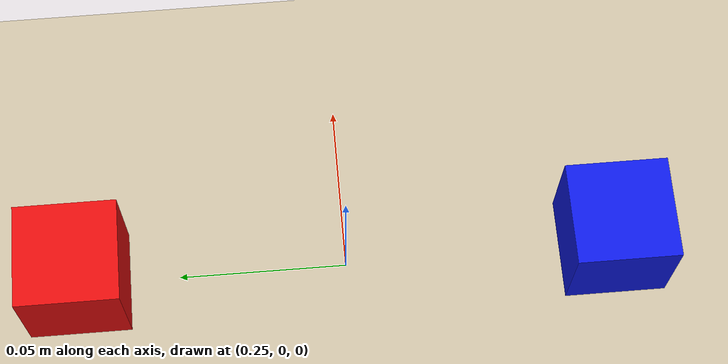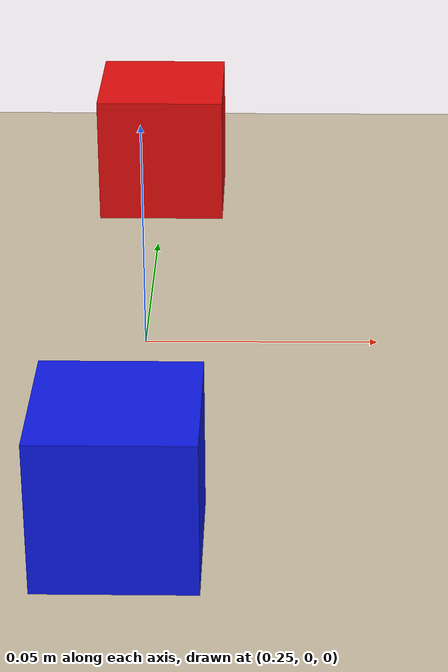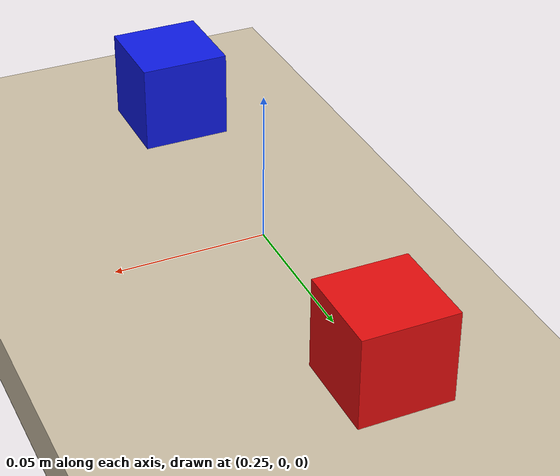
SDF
<?xml version="1.0"?>
<!-- 机（上面が z=0）・赤箱・青箱。ロボットは launch で原点に spawn する -->
<sdf version="1.6">
  <world name="default">
    <include><uri>model://sun</uri></include>

    <!-- real_time_update_rate は CPU 用の値。GPU マシンでは環境変数 SIM_REAL_TIME_UPDATE_RATE で上書きする（sim.launch.py） -->
    <physics type="ode">
      <max_step_size>0.002</max_step_size>
      <real_time_update_rate>80</real_time_update_rate>
    </physics>

    <!-- 状態の取得・設定サービス（/get_entity_state, /set_entity_state）と spawn。
         /model_states・/link_states は 50Hz（疑似固定で箱を手先に追従させるときの遅れを減らす） -->
    <plugin name="gazebo_ros_init" filename="libgazebo_ros_init.so"/>
    <plugin name="gazebo_ros_factory" filename="libgazebo_ros_factory.so"/>
    <plugin name="gazebo_ros_state" filename="libgazebo_ros_state.so">
      <ros><namespace>/</namespace></ros>
      <update_rate>50.0</update_rate>
    </plugin>

    <model name="floor">
      <static>true</static>
      <pose>0 0 -0.02 0 0 0</pose>
      <link name="link">
        <collision name="c"><geometry><plane><normal>0 0 1</normal><size>10 10</size></plane></geometry></collision>
        <visual name="v">
          <geometry><plane><normal>0 0 1</normal><size>10 10</size></plane></geometry>
          <material><ambient>0.35 0.35 0.35 1</ambient><diffuse>0.35 0.35 0.35 1</diffuse></material>
        </visual>
      </link>
    </model>

    <model name="table">
      <static>true</static>
      <pose>0.3 0 -0.01 0 0 0</pose>
      <link name="link">
        <collision name="c">
          <geometry><box><size>1.0 1.2 0.02</size></box></geometry>
          <surface><friction><ode><mu>1.0</mu><mu2>1.0</mu2></ode></friction></surface>
        </collision>
        <visual name="v">
          <geometry><box><size>1.0 1.2 0.02</size></box></geometry>
          <material><ambient>0.8 0.75 0.65 1</ambient><diffuse>0.8 0.75 0.65 1</diffuse></material>
        </visual>
      </link>
    </model>

    <!-- 約 3cm 角の箱。初期位置は scene_manager が reset で上書きする。
         collide_bitmask 0x02：可動指（0x01）とは当たらない（疑似固定 B1。so101.urdf.xacro） -->
    <model name="red_box">
      <pose>0.25 0.08 0.015 0 0 0</pose>
      <link name="link">
        <inertial>
          <mass>0.03</mass>
          <inertia><ixx>4.5e-6</ixx><iyy>4.5e-6</iyy><izz>4.5e-6</izz><ixy>0</ixy><ixz>0</ixz><iyz>0</iyz></inertia>
        </inertial>
        <collision name="c">
          <geometry><box><size>0.03 0.03 0.03</size></box></geometry>
          <surface>
            <friction><ode><mu>1.5</mu><mu2>1.5</mu2></ode></friction>
            <contact><collide_bitmask>0x02</collide_bitmask></contact>
          </surface>
        </collision>
        <visual name="v">
          <geometry><box><size>0.03 0.03 0.03</size></box></geometry>
          <material><ambient>0.9 0.05 0.05 1</ambient><diffuse>0.9 0.05 0.05 1</diffuse></material>
        </visual>
      </link>
    </model>

    <model name="blue_box">
      <pose>0.25 -0.08 0.015 0 0 0</pose>
      <link name="link">
        <inertial>
          <mass>0.03</mass>
          <inertia><ixx>4.5e-6</ixx><iyy>4.5e-6</iyy><izz>4.5e-6</izz><ixy>0</ixy><ixz>0</ixz><iyz>0</iyz></inertia>
        </inertial>
        <collision name="c">
          <geometry><box><size>0.03 0.03 0.03</size></box></geometry>
          <surface>
            <friction><ode><mu>1.5</mu><mu2>1.5</mu2></ode></friction>
            <contact><collide_bitmask>0x02</collide_bitmask></contact>
          </surface>
        </collision>
        <visual name="v">
          <geometry><box><size>0.03 0.03 0.03</size></box></geometry>
          <material><ambient>0.05 0.1 0.9 1</ambient><diffuse>0.05 0.1 0.9 1</diffuse></material>
        </visual>
      </link>
    </model>
  </world>
</sdf>
